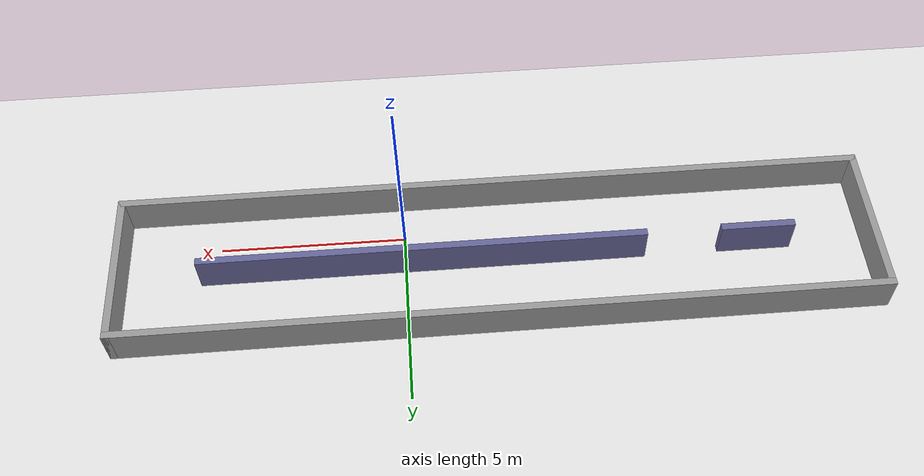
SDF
<?xml version="1.0" ?>
<sdf version="1.9">
  <world name="corridor_world">

    <physics name="1ms" type="ignored">
      <max_step_size>0.001</max_step_size>
      <real_time_factor>2.0</real_time_factor>
    </physics>

    <plugin filename="gz-sim-physics-system" name="gz::sim::systems::Physics"/>
    <plugin filename="gz-sim-user-commands-system" name="gz::sim::systems::UserCommands"/>
    <plugin filename="gz-sim-scene-broadcaster-system" name="gz::sim::systems::SceneBroadcaster"/>
    <plugin filename="gz-sim-contact-system" name="gz::sim::systems::Contact"/>
    <plugin filename="gz-sim-sensors-system" name="gz::sim::systems::Sensors">
      <render_engine>ogre2</render_engine>
    </plugin>
    <plugin filename="gz-sim-imu-system" name="gz::sim::systems::Imu"/>

    <light name="sun" type="directional">
      <cast_shadows>true</cast_shadows>
      <pose>0 0 10 0 0 0</pose>
      <diffuse>0.8 0.8 0.8 1</diffuse>
      <specular>0.2 0.2 0.2 1</specular>
      <direction>-0.5 0.1 -0.9</direction>
    </light>

    <!-- Ground Plane — centered on corridor midpoint (-2.5, 1.0); sized to cover full interior + walls -->
    <model name="ground_plane">
      <static>true</static>
      <pose>-2.5 1.0 0 0 0 0</pose>
      <link name="link">
        <collision name="collision">
          <geometry><plane><normal>0 0 1</normal><size>24 8</size></plane></geometry>
          <surface>
            <friction>
              <ode>
                <mu>100000.0</mu>
                <mu2>100000.0</mu2>
                <slip1>0.0</slip1>
                <slip2>0.0</slip2>
              </ode>
            </friction>
          </surface>
        </collision>
        <visual name="visual">
          <geometry><plane><normal>0 0 1</normal><size>24 8</size></plane></geometry>
          <material><ambient>0.9 0.9 0.9 1</ambient><diffuse>0.9 0.9 0.9 1</diffuse></material>
        </visual>
      </link>
    </model>

    <!-- South wall -->
    <model name="south_wall">
      <static>true</static>
      <pose>-2.5 -1.1 0.5 0 0 0</pose>
      <link name="link">
        <collision name="collision"><geometry><box><size>20.4 0.2 1</size></box></geometry></collision>
        <visual name="visual"><geometry><box><size>20.4 0.2 1</size></box></geometry>
          <material><ambient>0.6 0.6 0.6 1</ambient><diffuse>0.6 0.6 0.6 1</diffuse></material>
        </visual>
      </link>
    </model>

    <!-- North wall -->
    <model name="north_wall">
      <static>true</static>
      <pose>-2.5 3.1 0.5 0 0 0</pose>
      <link name="link">
        <collision name="collision"><geometry><box><size>20.4 0.2 1</size></box></geometry></collision>
        <visual name="visual"><geometry><box><size>20.4 0.2 1</size></box></geometry>
          <material><ambient>0.6 0.6 0.6 1</ambient><diffuse>0.6 0.6 0.6 1</diffuse></material>
        </visual>
      </link>
    </model>

    <!-- West end wall -->
    <model name="west_wall">
      <static>true</static>
      <pose>-12.6 1.0 0.5 0 0 0</pose>
      <link name="link">
        <collision name="collision"><geometry><box><size>0.2 4.4 1</size></box></geometry></collision>
        <visual name="visual"><geometry><box><size>0.2 4.4 1</size></box></geometry>
          <material><ambient>0.6 0.6 0.6 1</ambient><diffuse>0.6 0.6 0.6 1</diffuse></material>
        </visual>
      </link>
    </model>

    <!-- East end wall -->
    <model name="east_wall">
      <static>true</static>
      <pose>7.6 1.0 0.5 0 0 0</pose>
      <link name="link">
        <collision name="collision"><geometry><box><size>0.2 4.4 1</size></box></geometry></collision>
        <visual name="visual"><geometry><box><size>0.2 4.4 1</size></box></geometry>
          <material><ambient>0.6 0.6 0.6 1</ambient><diffuse>0.6 0.6 0.6 1</diffuse></material>
        </visual>
      </link>
    </model>

    <!-- Divider short piece (west side only): x ∈ [-10.5, -8.5] (2 m) -->
    <model name="divider_short">
      <static>true</static>
      <pose>-9.5 1.0 0.5 0 0 0</pose>
      <link name="link">
        <collision name="collision"><geometry><box><size>2 0.2 1</size></box></geometry></collision>
        <visual name="visual"><geometry><box><size>2 0.2 1</size></box></geometry>
          <material><ambient>0.4 0.4 0.6 1</ambient><diffuse>0.4 0.4 0.6 1</diffuse></material>
        </visual>
      </link>
    </model>

    <!-- Divider main piece: x ∈ [-6.5, +5.5] (12 m) -->
    <model name="divider_main">
      <static>true</static>
      <pose>-0.5 1.0 0.5 0 0 0</pose>
      <link name="link">
        <collision name="collision"><geometry><box><size>12 0.2 1</size></box></geometry></collision>
        <visual name="visual"><geometry><box><size>12 0.2 1</size></box></geometry>
          <material><ambient>0.4 0.4 0.6 1</ambient><diffuse>0.4 0.4 0.6 1</diffuse></material>
        </visual>
      </link>
    </model>

  </world>
</sdf>
